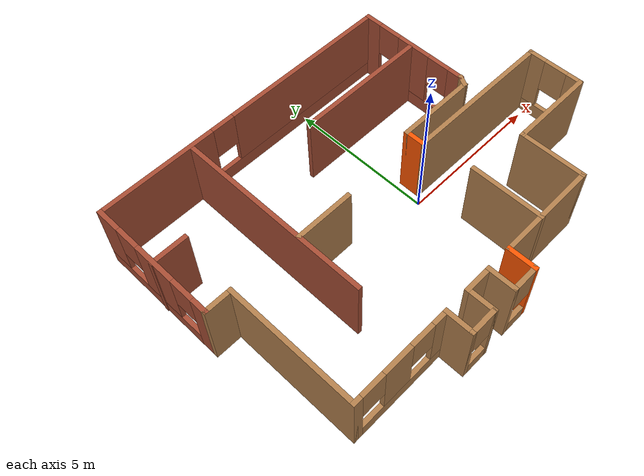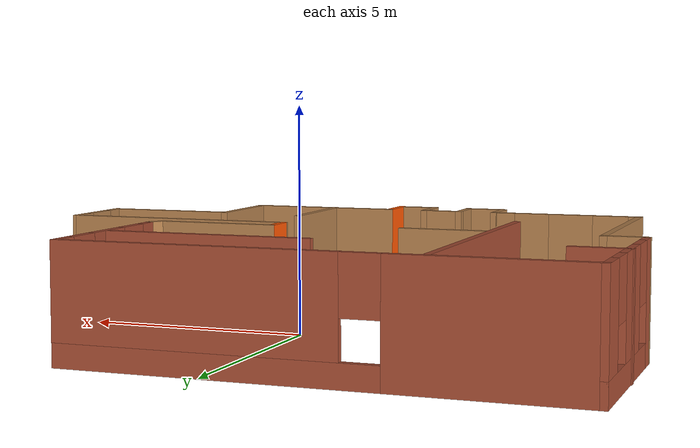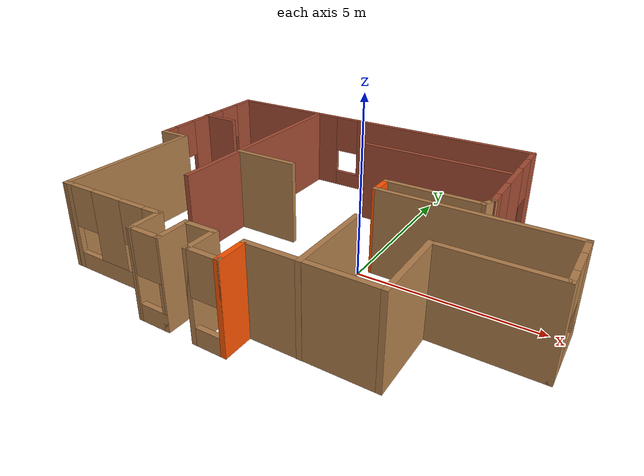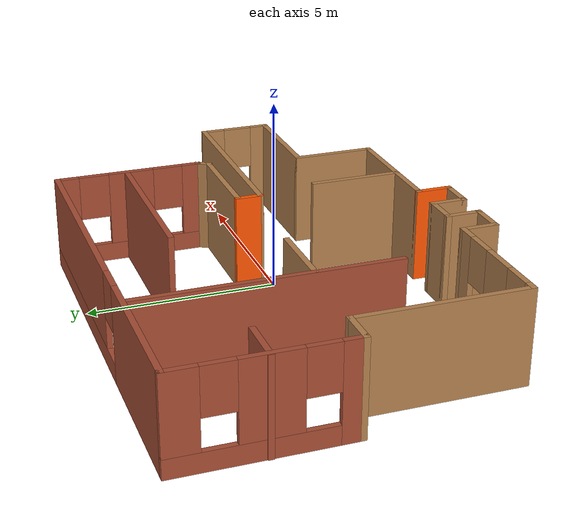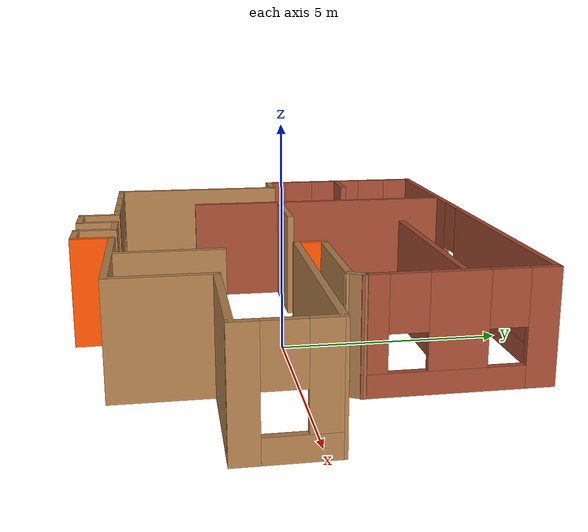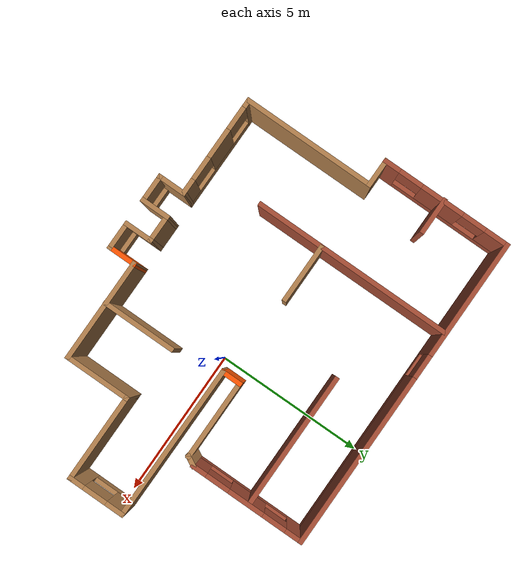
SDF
<?xml version='1.0'?>
<sdf version='1.6'>
  <model name='Building'>
    <pose frame=''>-1.11389 0.237 0 0 -0 0</pose>
    <link name='Wall_10'>
      <collision name='Wall_10_Collision'>
        <geometry>
          <box>
            <size>1 0.15 2.5</size>
          </box>
        </geometry>
        <pose frame=''>0 0 1.25 0 -0 0</pose>
      </collision>
      <visual name='Wall_10_Visual'>
        <pose frame=''>0 0 1.25 0 -0 0</pose>
        <geometry>
          <box>
            <size>1 0.15 2.5</size>
          </box>
        </geometry>
        <material>
          <script>
            <uri>file://media/materials/scripts/gazebo.material</uri>
            <name>Gazebo/Grey</name>
          </script>
          <ambient>1 0.333333 0 1</ambient>
        </material>
        <meta>
          <layer>0</layer>
        </meta>
      </visual>
      <pose frame=''>0.287386 -4.35 0 0 -0 1.5708</pose>
    </link>
    <link name='Wall_12'>
      <collision name='Wall_12_Collision'>
        <geometry>
          <box>
            <size>3.5 0.15 2.5</size>
          </box>
        </geometry>
        <pose frame=''>0 0 1.25 0 -0 0</pose>
      </collision>
      <visual name='Wall_12_Visual'>
        <pose frame=''>0 0 1.25 0 -0 0</pose>
        <geometry>
          <box>
            <size>3.5 0.15 2.5</size>
          </box>
        </geometry>
        <material>
          <script>
            <uri>file://media/materials/scripts/gazebo.material</uri>
            <name>Gazebo/Wood</name>
          </script>
          <ambient>1 0.333333 0 1</ambient>
        </material>
        <meta>
          <layer>0</layer>
        </meta>
      </visual>
      <pose frame=''>1.96239 -3.925 0 0 -0 0</pose>
    </link>
    <link name='Wall_13'>
      <collision name='Wall_13_Collision'>
        <geometry>
          <box>
            <size>2.25 0.15 2.5</size>
          </box>
        </geometry>
        <pose frame=''>0 0 1.25 0 -0 0</pose>
      </collision>
      <visual name='Wall_13_Visual'>
        <pose frame=''>0 0 1.25 0 -0 0</pose>
        <geometry>
          <box>
            <size>2.25 0.15 2.5</size>
          </box>
        </geometry>
        <material>
          <script>
            <uri>file://media/materials/scripts/gazebo.material</uri>
            <name>Gazebo/Wood</name>
          </script>
          <ambient>1 0.333333 0 1</ambient>
        </material>
        <meta>
          <layer>0</layer>
        </meta>
      </visual>
      <pose frame=''>3.63739 -2.875 0 0 -0 1.5708</pose>
    </link>
    <link name='Wall_14'>
      <collision name='Wall_14_Collision'>
        <geometry>
          <box>
            <size>3 0.15 2.5</size>
          </box>
        </geometry>
        <pose frame=''>0 0 1.25 0 -0 0</pose>
      </collision>
      <visual name='Wall_14_Visual'>
        <pose frame=''>0 0 1.25 0 -0 0</pose>
        <geometry>
          <box>
            <size>3 0.15 2.5</size>
          </box>
        </geometry>
        <material>
          <script>
            <uri>file://media/materials/scripts/gazebo.material</uri>
            <name>Gazebo/Wood</name>
          </script>
          <ambient>1 0.333333 0 1</ambient>
        </material>
        <meta>
          <layer>0</layer>
        </meta>
      </visual>
      <pose frame=''>5.06239 -1.825 0 0 -0 0</pose>
    </link>
    <link name='Wall_15'>
      <pose frame=''>6.48739 -0.9 0 0 -0 1.5708</pose>
      <visual name='Wall_15_Visual_0'>
        <pose frame=''>-0.725722 0 1.25 0 -0 0</pose>
        <geometry>
          <box>
            <size>0.548555 0.15 2.5</size>
          </box>
        </geometry>
        <material>
          <script>
            <uri>file://media/materials/scripts/gazebo.material</uri>
            <name>Gazebo/Wood</name>
          </script>
          <ambient>1 0.333333 0 1</ambient>
        </material>
        <meta>
          <layer>0</layer>
        </meta>
      </visual>
      <collision name='Wall_15_Collision_0'>
        <geometry>
          <box>
            <size>0.548555 0.15 2.5</size>
          </box>
        </geometry>
        <pose frame=''>-0.725722 0 1.25 0 -0 0</pose>
      </collision>
      <visual name='Wall_15_Visual_1'>
        <pose frame=''>0.274278 0 0.25 0 -0 0</pose>
        <geometry>
          <box>
            <size>1.45145 0.15 0.5</size>
          </box>
        </geometry>
        <material>
          <script>
            <uri>file://media/materials/scripts/gazebo.material</uri>
            <name>Gazebo/Wood</name>
          </script>
          <ambient>1 0.333333 0 1</ambient>
        </material>
        <meta>
          <layer>0</layer>
        </meta>
      </visual>
      <collision name='Wall_15_Collision_1'>
        <geometry>
          <box>
            <size>1.45145 0.15 0.5</size>
          </box>
        </geometry>
        <pose frame=''>0.274278 0 0.25 0 -0 0</pose>
      </collision>
      <visual name='Wall_15_Visual_2'>
        <pose frame=''>0.674278 0 1.5 0 -0 0</pose>
        <geometry>
          <box>
            <size>0.651445 0.15 2</size>
          </box>
        </geometry>
        <material>
          <script>
            <uri>file://media/materials/scripts/gazebo.material</uri>
            <name>Gazebo/Wood</name>
          </script>
          <ambient>1 0.333333 0 1</ambient>
        </material>
        <meta>
          <layer>0</layer>
        </meta>
      </visual>
      <collision name='Wall_15_Collision_2'>
        <geometry>
          <box>
            <size>0.651445 0.15 2</size>
          </box>
        </geometry>
        <pose frame=''>0.674278 0 1.5 0 -0 0</pose>
      </collision>
      <visual name='Wall_15_Visual_3'>
        <pose frame=''>-0.051445 0 1.9 0 -0 0</pose>
        <geometry>
          <box>
            <size>0.8 0.15 1.2</size>
          </box>
        </geometry>
        <material>
          <script>
            <uri>file://media/materials/scripts/gazebo.material</uri>
            <name>Gazebo/Wood</name>
          </script>
          <ambient>1 0.333333 0 1</ambient>
        </material>
        <meta>
          <layer>0</layer>
        </meta>
      </visual>
      <collision name='Wall_15_Collision_3'>
        <geometry>
          <box>
            <size>0.8 0.15 1.2</size>
          </box>
        </geometry>
        <pose frame=''>-0.051445 0 1.9 0 -0 0</pose>
      </collision>
    </link>
    <link name='Wall_16'>
      <collision name='Wall_16_Collision'>
        <geometry>
          <box>
            <size>5.25 0.15 2.5</size>
          </box>
        </geometry>
        <pose frame=''>0 0 1.25 0 -0 0</pose>
      </collision>
      <visual name='Wall_16_Visual'>
        <pose frame=''>0 0 1.25 0 -0 0</pose>
        <geometry>
          <box>
            <size>5.25 0.15 2.5</size>
          </box>
        </geometry>
        <material>
          <script>
            <uri>file://media/materials/scripts/gazebo.material</uri>
            <name>Gazebo/Wood</name>
          </script>
          <ambient>1 0.333333 0 1</ambient>
        </material>
        <meta>
          <layer>0</layer>
        </meta>
      </visual>
      <pose frame=''>3.93739 0.0365 0 0 -0 3.13708</pose>
    </link>
    <link name='Wall_2'>
      <collision name='Wall_2_Collision'>
        <geometry>
          <box>
            <size>4.5 0.15 2.5</size>
          </box>
        </geometry>
        <pose frame=''>0 0 1.25 0 -0 0</pose>
      </collision>
      <visual name='Wall_2_Visual'>
        <pose frame=''>0 0 1.25 0 -0 0</pose>
        <geometry>
          <box>
            <size>4.5 0.15 2.5</size>
          </box>
        </geometry>
        <material>
          <script>
            <uri>file://media/materials/scripts/gazebo.material</uri>
            <name>Gazebo/Wood</name>
          </script>
          <ambient>0 0 0.498039 1</ambient>
        </material>
        <meta>
          <layer>0</layer>
        </meta>
      </visual>
      <pose frame=''>-5.61261 -1.75 0 0 0 -1.5708</pose>
    </link>
    <link name='Wall_21'>
      <collision name='Wall_21_Collision'>
        <geometry>
          <box>
            <size>0.75 0.15 2.5</size>
          </box>
        </geometry>
        <pose frame=''>0 0 1.25 0 -0 0</pose>
      </collision>
      <visual name='Wall_21_Visual'>
        <pose frame=''>0 0 1.25 0 -0 0</pose>
        <geometry>
          <box>
            <size>0.75 0.15 2.5</size>
          </box>
        </geometry>
        <material>
          <script>
            <uri>file://media/materials/scripts/gazebo.material</uri>
            <name>Gazebo/Grey</name>
          </script>
          <ambient>1 0.333333 0 1</ambient>
        </material>
        <meta>
          <layer>0</layer>
        </meta>
      </visual>
      <pose frame=''>1.38739 0.348 0 0 -0 1.5708</pose>
    </link>
    <link name='Wall_25'>
      <collision name='Wall_25_Collision'>
        <geometry>
          <box>
            <size>1 0.15 2.5</size>
          </box>
        </geometry>
        <pose frame=''>0 0 1.25 0 -0 0</pose>
      </collision>
      <visual name='Wall_25_Visual'>
        <pose frame=''>0 0 1.25 0 -0 0</pose>
        <geometry>
          <box>
            <size>1 0.15 2.5</size>
          </box>
        </geometry>
        <material>
          <script>
            <uri>file://media/materials/scripts/gazebo.material</uri>
            <name>Gazebo/Wood</name>
          </script>
          <ambient>0.996078 0.47451 0.0196078 1</ambient>
        </material>
        <meta>
          <layer>0</layer>
        </meta>
      </visual>
      <pose frame=''>-6.03761 0.425 0 0 -0 3.14159</pose>
    </link>
    <link name='Wall_26'>
      <pose frame=''>-6.46261 2.6 0 0 -0 1.5708</pose>
      <visual name='Wall_26_Visual_0'>
        <pose frame=''>-1.95691 0 1.25 0 -0 0</pose>
        <geometry>
          <box>
            <size>0.586172 0.15 2.5</size>
          </box>
        </geometry>
        <material>
          <script>
            <uri>file://media/materials/scripts/gazebo.material</uri>
            <name>Gazebo/Bricks</name>
          </script>
          <ambient>0 0 0.498039 1</ambient>
        </material>
        <meta>
          <layer>0</layer>
        </meta>
      </visual>
      <collision name='Wall_26_Collision_0'>
        <geometry>
          <box>
            <size>0.586172 0.15 2.5</size>
          </box>
        </geometry>
        <pose frame=''>-1.95691 0 1.25 0 -0 0</pose>
      </collision>
      <visual name='Wall_26_Visual_1'>
        <pose frame=''>0.293086 0 0.25 0 -0 0</pose>
        <geometry>
          <box>
            <size>3.91383 0.15 0.5</size>
          </box>
        </geometry>
        <material>
          <script>
            <uri>file://media/materials/scripts/gazebo.material</uri>
            <name>Gazebo/Bricks</name>
          </script>
          <ambient>0 0 0.498039 1</ambient>
        </material>
        <meta>
          <layer>0</layer>
        </meta>
      </visual>
      <collision name='Wall_26_Collision_1'>
        <geometry>
          <box>
            <size>3.91383 0.15 0.5</size>
          </box>
        </geometry>
        <pose frame=''>0.293086 0 0.25 0 -0 0</pose>
      </collision>
      <visual name='Wall_26_Visual_2'>
        <pose frame=''>-0.133319 0 1.5 0 -0 0</pose>
        <geometry>
          <box>
            <size>1.46102 0.15 2</size>
          </box>
        </geometry>
        <material>
          <script>
            <uri>file://media/materials/scripts/gazebo.material</uri>
            <name>Gazebo/Bricks</name>
          </script>
          <ambient>0 0 0.498039 1</ambient>
        </material>
        <meta>
          <layer>0</layer>
        </meta>
      </visual>
      <collision name='Wall_26_Collision_2'>
        <geometry>
          <box>
            <size>1.46102 0.15 2</size>
          </box>
        </geometry>
        <pose frame=''>-0.133319 0 1.5 0 -0 0</pose>
      </collision>
      <visual name='Wall_26_Visual_3'>
        <pose frame=''>1.8236 0 1.5 0 -0 0</pose>
        <geometry>
          <box>
            <size>0.852811 0.15 2</size>
          </box>
        </geometry>
        <material>
          <script>
            <uri>file://media/materials/scripts/gazebo.material</uri>
            <name>Gazebo/Bricks</name>
          </script>
          <ambient>0 0 0.498039 1</ambient>
        </material>
        <meta>
          <layer>0</layer>
        </meta>
      </visual>
      <collision name='Wall_26_Collision_3'>
        <geometry>
          <box>
            <size>0.852811 0.15 2</size>
          </box>
        </geometry>
        <pose frame=''>1.8236 0 1.5 0 -0 0</pose>
      </collision>
      <visual name='Wall_26_Visual_4'>
        <pose frame=''>-1.26383 0 1.9 0 -0 0</pose>
        <geometry>
          <box>
            <size>0.8 0.15 1.2</size>
          </box>
        </geometry>
        <material>
          <script>
            <uri>file://media/materials/scripts/gazebo.material</uri>
            <name>Gazebo/Bricks</name>
          </script>
          <ambient>0 0 0.498039 1</ambient>
        </material>
        <meta>
          <layer>0</layer>
        </meta>
      </visual>
      <collision name='Wall_26_Collision_4'>
        <geometry>
          <box>
            <size>0.8 0.15 1.2</size>
          </box>
        </geometry>
        <pose frame=''>-1.26383 0 1.9 0 -0 0</pose>
      </collision>
      <visual name='Wall_26_Visual_5'>
        <pose frame=''>0.997189 0 1.9 0 -0 0</pose>
        <geometry>
          <box>
            <size>0.8 0.15 1.2</size>
          </box>
        </geometry>
        <material>
          <script>
            <uri>file://media/materials/scripts/gazebo.material</uri>
            <name>Gazebo/Bricks</name>
          </script>
          <ambient>0 0 0.498039 1</ambient>
        </material>
        <meta>
          <layer>0</layer>
        </meta>
      </visual>
      <collision name='Wall_26_Collision_5'>
        <geometry>
          <box>
            <size>0.8 0.15 1.2</size>
          </box>
        </geometry>
        <pose frame=''>0.997189 0 1.9 0 -0 0</pose>
      </collision>
    </link>
    <link name='Wall_27'>
      <pose frame=''>-1.16261 4.775 0 0 -0 0</pose>
      <visual name='Wall_27_Visual_0'>
        <pose frame=''>-3.35553 0 1.25 0 -0 0</pose>
        <geometry>
          <box>
            <size>4.03895 0.15 2.5</size>
          </box>
        </geometry>
        <material>
          <script>
            <uri>file://media/materials/scripts/gazebo.material</uri>
            <name>Gazebo/Bricks</name>
          </script>
          <ambient>0.996078 0.47451 0.0196078 1</ambient>
        </material>
        <meta>
          <layer>0</layer>
        </meta>
      </visual>
      <collision name='Wall_27_Collision_0'>
        <geometry>
          <box>
            <size>4.03895 0.15 2.5</size>
          </box>
        </geometry>
        <pose frame=''>-3.35553 0 1.25 0 -0 0</pose>
      </collision>
      <visual name='Wall_27_Visual_1'>
        <pose frame=''>2.01947 0 0.25 0 -0 0</pose>
        <geometry>
          <box>
            <size>6.71105 0.15 0.5</size>
          </box>
        </geometry>
        <material>
          <script>
            <uri>file://media/materials/scripts/gazebo.material</uri>
            <name>Gazebo/Bricks</name>
          </script>
          <ambient>0.996078 0.47451 0.0196078 1</ambient>
        </material>
        <meta>
          <layer>0</layer>
        </meta>
      </visual>
      <collision name='Wall_27_Collision_1'>
        <geometry>
          <box>
            <size>6.71105 0.15 0.5</size>
          </box>
        </geometry>
        <pose frame=''>2.01947 0 0.25 0 -0 0</pose>
      </collision>
      <visual name='Wall_27_Visual_2'>
        <pose frame=''>2.41947 0 1.5 0 -0 0</pose>
        <geometry>
          <box>
            <size>5.91105 0.15 2</size>
          </box>
        </geometry>
        <material>
          <script>
            <uri>file://media/materials/scripts/gazebo.material</uri>
            <name>Gazebo/Bricks</name>
          </script>
          <ambient>0.996078 0.47451 0.0196078 1</ambient>
        </material>
        <meta>
          <layer>0</layer>
        </meta>
      </visual>
      <collision name='Wall_27_Collision_2'>
        <geometry>
          <box>
            <size>5.91105 0.15 2</size>
          </box>
        </geometry>
        <pose frame=''>2.41947 0 1.5 0 -0 0</pose>
      </collision>
      <visual name='Wall_27_Visual_3'>
        <pose frame=''>-0.936052 0 1.9 0 -0 0</pose>
        <geometry>
          <box>
            <size>0.8 0.15 1.2</size>
          </box>
        </geometry>
        <material>
          <script>
            <uri>file://media/materials/scripts/gazebo.material</uri>
            <name>Gazebo/Bricks</name>
          </script>
          <ambient>0.996078 0.47451 0.0196078 1</ambient>
        </material>
        <meta>
          <layer>0</layer>
        </meta>
      </visual>
      <collision name='Wall_27_Collision_3'>
        <geometry>
          <box>
            <size>0.8 0.15 1.2</size>
          </box>
        </geometry>
        <pose frame=''>-0.936052 0 1.9 0 -0 0</pose>
      </collision>
    </link>
    <link name='Wall_28'>
      <pose frame=''>4.13739 2.85 0 0 0 -1.5708</pose>
      <visual name='Wall_28_Visual_0'>
        <pose frame=''>-1.67999 0 1.25 0 -0 0</pose>
        <geometry>
          <box>
            <size>0.640009 0.15 2.5</size>
          </box>
        </geometry>
        <material>
          <script>
            <uri>file://media/materials/scripts/gazebo.material</uri>
            <name>Gazebo/Bricks</name>
          </script>
          <ambient>1 0.333333 0 1</ambient>
        </material>
        <meta>
          <layer>0</layer>
        </meta>
      </visual>
      <collision name='Wall_28_Collision_0'>
        <geometry>
          <box>
            <size>0.640009 0.15 2.5</size>
          </box>
        </geometry>
        <pose frame=''>-1.67999 0 1.25 0 -0 0</pose>
      </collision>
      <visual name='Wall_28_Visual_1'>
        <pose frame=''>0.320005 0 0.25 0 -0 0</pose>
        <geometry>
          <box>
            <size>3.35999 0.15 0.5</size>
          </box>
        </geometry>
        <material>
          <script>
            <uri>file://media/materials/scripts/gazebo.material</uri>
            <name>Gazebo/Bricks</name>
          </script>
          <ambient>1 0.333333 0 1</ambient>
        </material>
        <meta>
          <layer>0</layer>
        </meta>
      </visual>
      <collision name='Wall_28_Collision_1'>
        <geometry>
          <box>
            <size>3.35999 0.15 0.5</size>
          </box>
        </geometry>
        <pose frame=''>0.320005 0 0.25 0 -0 0</pose>
      </collision>
      <visual name='Wall_28_Visual_2'>
        <pose frame=''>0.050817 0 1.5 0 -0 0</pose>
        <geometry>
          <box>
            <size>1.22161 0.15 2</size>
          </box>
        </geometry>
        <material>
          <script>
            <uri>file://media/materials/scripts/gazebo.material</uri>
            <name>Gazebo/Bricks</name>
          </script>
          <ambient>1 0.333333 0 1</ambient>
        </material>
        <meta>
          <layer>0</layer>
        </meta>
      </visual>
      <collision name='Wall_28_Collision_2'>
        <geometry>
          <box>
            <size>1.22161 0.15 2</size>
          </box>
        </geometry>
        <pose frame=''>0.050817 0 1.5 0 -0 0</pose>
      </collision>
      <visual name='Wall_28_Visual_3'>
        <pose frame=''>1.73081 0 1.5 0 -0 0</pose>
        <geometry>
          <box>
            <size>0.538376 0.15 2</size>
          </box>
        </geometry>
        <material>
          <script>
            <uri>file://media/materials/scripts/gazebo.material</uri>
            <name>Gazebo/Bricks</name>
          </script>
          <ambient>1 0.333333 0 1</ambient>
        </material>
        <meta>
          <layer>0</layer>
        </meta>
      </visual>
      <collision name='Wall_28_Collision_3'>
        <geometry>
          <box>
            <size>0.538376 0.15 2</size>
          </box>
        </geometry>
        <pose frame=''>1.73081 0 1.5 0 -0 0</pose>
      </collision>
      <visual name='Wall_28_Visual_4'>
        <pose frame=''>-0.959991 0 1.9 0 -0 0</pose>
        <geometry>
          <box>
            <size>0.8 0.15 1.2</size>
          </box>
        </geometry>
        <material>
          <script>
            <uri>file://media/materials/scripts/gazebo.material</uri>
            <name>Gazebo/Bricks</name>
          </script>
          <ambient>1 0.333333 0 1</ambient>
        </material>
        <meta>
          <layer>0</layer>
        </meta>
      </visual>
      <collision name='Wall_28_Collision_4'>
        <geometry>
          <box>
            <size>0.8 0.15 1.2</size>
          </box>
        </geometry>
        <pose frame=''>-0.959991 0 1.9 0 -0 0</pose>
      </collision>
      <visual name='Wall_28_Visual_5'>
        <pose frame=''>1.06162 0 1.9 0 -0 0</pose>
        <geometry>
          <box>
            <size>0.8 0.15 1.2</size>
          </box>
        </geometry>
        <material>
          <script>
            <uri>file://media/materials/scripts/gazebo.material</uri>
            <name>Gazebo/Bricks</name>
          </script>
          <ambient>1 0.333333 0 1</ambient>
        </material>
        <meta>
          <layer>0</layer>
        </meta>
      </visual>
      <collision name='Wall_28_Collision_5'>
        <geometry>
          <box>
            <size>0.8 0.15 1.2</size>
          </box>
        </geometry>
        <pose frame=''>1.06162 0 1.9 0 -0 0</pose>
      </collision>
    </link>
    <link name='Wall_3'>
      <pose frame=''>-3.93761 -3.925 0 0 -0 0</pose>
      <visual name='Wall_3_Visual_0'>
        <pose frame=''>-1.59194 0 1.25 0 -0 0</pose>
        <geometry>
          <box>
            <size>0.316126 0.15 2.5</size>
          </box>
        </geometry>
        <material>
          <script>
            <uri>file://media/materials/scripts/gazebo.material</uri>
            <name>Gazebo/Wood</name>
          </script>
          <ambient>0 0 0.498039 1</ambient>
        </material>
        <meta>
          <layer>0</layer>
        </meta>
      </visual>
      <collision name='Wall_3_Collision_0'>
        <geometry>
          <box>
            <size>0.316126 0.15 2.5</size>
          </box>
        </geometry>
        <pose frame=''>-1.59194 0 1.25 0 -0 0</pose>
      </collision>
      <visual name='Wall_3_Visual_1'>
        <pose frame=''>0.158063 0 0.25 0 -0 0</pose>
        <geometry>
          <box>
            <size>3.18387 0.15 0.5</size>
          </box>
        </geometry>
        <material>
          <script>
            <uri>file://media/materials/scripts/gazebo.material</uri>
            <name>Gazebo/Wood</name>
          </script>
          <ambient>0 0 0.498039 1</ambient>
        </material>
        <meta>
          <layer>0</layer>
        </meta>
      </visual>
      <collision name='Wall_3_Collision_1'>
        <geometry>
          <box>
            <size>3.18387 0.15 0.5</size>
          </box>
        </geometry>
        <pose frame=''>0.158063 0 0.25 0 -0 0</pose>
      </collision>
      <visual name='Wall_3_Visual_2'>
        <pose frame=''>-0.129467 0 1.5 0 -0 0</pose>
        <geometry>
          <box>
            <size>1.00881 0.15 2</size>
          </box>
        </geometry>
        <material>
          <script>
            <uri>file://media/materials/scripts/gazebo.material</uri>
            <name>Gazebo/Wood</name>
          </script>
          <ambient>0 0 0.498039 1</ambient>
        </material>
        <meta>
          <layer>0</layer>
        </meta>
      </visual>
      <collision name='Wall_3_Collision_2'>
        <geometry>
          <box>
            <size>1.00881 0.15 2</size>
          </box>
        </geometry>
        <pose frame=''>-0.129467 0 1.5 0 -0 0</pose>
      </collision>
      <visual name='Wall_3_Visual_3'>
        <pose frame=''>1.46247 0 1.5 0 -0 0</pose>
        <geometry>
          <box>
            <size>0.57506 0.15 2</size>
          </box>
        </geometry>
        <material>
          <script>
            <uri>file://media/materials/scripts/gazebo.material</uri>
            <name>Gazebo/Wood</name>
          </script>
          <ambient>0 0 0.498039 1</ambient>
        </material>
        <meta>
          <layer>0</layer>
        </meta>
      </visual>
      <collision name='Wall_3_Collision_3'>
        <geometry>
          <box>
            <size>0.57506 0.15 2</size>
          </box>
        </geometry>
        <pose frame=''>1.46247 0 1.5 0 -0 0</pose>
      </collision>
      <visual name='Wall_3_Visual_4'>
        <pose frame=''>-1.03387 0 1.9 0 -0 0</pose>
        <geometry>
          <box>
            <size>0.8 0.15 1.2</size>
          </box>
        </geometry>
        <material>
          <script>
            <uri>file://media/materials/scripts/gazebo.material</uri>
            <name>Gazebo/Wood</name>
          </script>
          <ambient>0 0 0.498039 1</ambient>
        </material>
        <meta>
          <layer>0</layer>
        </meta>
      </visual>
      <collision name='Wall_3_Collision_4'>
        <geometry>
          <box>
            <size>0.8 0.15 1.2</size>
          </box>
        </geometry>
        <pose frame=''>-1.03387 0 1.9 0 -0 0</pose>
      </collision>
      <visual name='Wall_3_Visual_5'>
        <pose frame=''>0.77494 0 1.9 0 -0 0</pose>
        <geometry>
          <box>
            <size>0.8 0.15 1.2</size>
          </box>
        </geometry>
        <material>
          <script>
            <uri>file://media/materials/scripts/gazebo.material</uri>
            <name>Gazebo/Wood</name>
          </script>
          <ambient>0 0 0.498039 1</ambient>
        </material>
        <meta>
          <layer>0</layer>
        </meta>
      </visual>
      <collision name='Wall_3_Collision_5'>
        <geometry>
          <box>
            <size>0.8 0.15 1.2</size>
          </box>
        </geometry>
        <pose frame=''>0.77494 0 1.9 0 -0 0</pose>
      </collision>
    </link>
    <link name='Wall_30'>
      <collision name='Wall_30_Collision'>
        <geometry>
          <box>
            <size>2.75 0.15 2.5</size>
          </box>
        </geometry>
        <pose frame=''>0 0 1.25 0 -0 0</pose>
      </collision>
      <visual name='Wall_30_Visual'>
        <pose frame=''>0 0 1.25 0 -0 0</pose>
        <geometry>
          <box>
            <size>2.75 0.15 2.5</size>
          </box>
        </geometry>
        <material>
          <script>
            <uri>file://media/materials/scripts/gazebo.material</uri>
            <name>Gazebo/Wood</name>
          </script>
          <ambient>1 0.333333 0 1</ambient>
        </material>
        <meta>
          <layer>0</layer>
        </meta>
      </visual>
      <pose frame=''>2.68739 0.648 0 0 -0 0</pose>
    </link>
    <link name='Wall_31'>
      <collision name='Wall_31_Collision'>
        <geometry>
          <box>
            <size>0.465006 0.15 2.5</size>
          </box>
        </geometry>
        <pose frame=''>0 0 1.25 0 -0 0</pose>
      </collision>
      <visual name='Wall_31_Visual'>
        <pose frame=''>0 0 1.25 0 -0 0</pose>
        <geometry>
          <box>
            <size>0.465006 0.15 2.5</size>
          </box>
        </geometry>
        <material>
          <script>
            <uri>file://media/materials/scripts/gazebo.material</uri>
            <name>Gazebo/Wood</name>
          </script>
          <ambient>1 0.333333 0 1</ambient>
        </material>
        <meta>
          <layer>0</layer>
        </meta>
      </visual>
      <pose frame=''>4.06239 0.7865 0 0 -0 1.07449</pose>
    </link>
    <link name='Wall_33'>
      <collision name='Wall_33_Collision'>
        <geometry>
          <box>
            <size>6.75 0.15 2.5</size>
          </box>
        </geometry>
        <pose frame=''>0 0 1.25 0 -0 0</pose>
      </collision>
      <visual name='Wall_33_Visual'>
        <pose frame=''>0 0 1.25 0 -0 0</pose>
        <geometry>
          <box>
            <size>6.75 0.15 2.5</size>
          </box>
        </geometry>
        <material>
          <script>
            <uri>file://media/materials/scripts/gazebo.material</uri>
            <name>Gazebo/Bricks</name>
          </script>
          <ambient>0 0 0.498039 1</ambient>
        </material>
        <meta>
          <layer>0</layer>
        </meta>
      </visual>
      <pose frame=''>-3.29568 1.441 0 0 0 -1.5708</pose>
    </link>
    <link name='Wall_35'>
      <collision name='Wall_35_Collision'>
        <geometry>
          <box>
            <size>4.5 0.15 2.5</size>
          </box>
        </geometry>
        <pose frame=''>0 0 1.25 0 -0 0</pose>
      </collision>
      <visual name='Wall_35_Visual'>
        <pose frame=''>0 0 1.25 0 -0 0</pose>
        <geometry>
          <box>
            <size>4.5 0.15 2.5</size>
          </box>
        </geometry>
        <material>
          <script>
            <uri>file://media/materials/scripts/gazebo.material</uri>
            <name>Gazebo/Bricks</name>
          </script>
          <ambient>0 0 0.498039 1</ambient>
        </material>
        <meta>
          <layer>0</layer>
        </meta>
      </visual>
      <pose frame=''>1.83195 2.90558 0 0 -0 0</pose>
    </link>
    <link name='Wall_37'>
      <collision name='Wall_37_Collision'>
        <geometry>
          <box>
            <size>1.25 0.15 2.5</size>
          </box>
        </geometry>
        <pose frame=''>0 0 1.25 0 -0 0</pose>
      </collision>
      <visual name='Wall_37_Visual'>
        <pose frame=''>0 0 1.25 0 -0 0</pose>
        <geometry>
          <box>
            <size>1.25 0.15 2.5</size>
          </box>
        </geometry>
        <material>
          <script>
            <uri>file://media/materials/scripts/gazebo.material</uri>
            <name>Gazebo/Bricks</name>
          </script>
          <ambient>0 0 0.498039 1</ambient>
        </material>
        <meta>
          <layer>0</layer>
        </meta>
      </visual>
      <pose frame=''>-5.9377 2.50658 0 0 -0 0</pose>
    </link>
    <link name='Wall_39'>
      <collision name='Wall_39_Collision'>
        <geometry>
          <box>
            <size>2.5 0.15 2.5</size>
          </box>
        </geometry>
        <pose frame=''>0 0 1.25 0 -0 0</pose>
      </collision>
      <visual name='Wall_39_Visual'>
        <pose frame=''>0 0 1.25 0 -0 0</pose>
        <geometry>
          <box>
            <size>2.5 0.15 2.5</size>
          </box>
        </geometry>
        <material>
          <script>
            <uri>file://media/materials/scripts/gazebo.material</uri>
            <name>Gazebo/Wood</name>
          </script>
          <ambient>1 0.333333 0 1</ambient>
        </material>
        <meta>
          <layer>0</layer>
        </meta>
      </visual>
      <pose frame=''>1.70516 -2.75567 0 0 -0 1.5708</pose>
    </link>
    <link name='Wall_4'>
      <collision name='Wall_4_Collision'>
        <geometry>
          <box>
            <size>1 0.15 2.5</size>
          </box>
        </geometry>
        <pose frame=''>0 0 1.25 0 -0 0</pose>
      </collision>
      <visual name='Wall_4_Visual'>
        <pose frame=''>0 0 1.25 0 -0 0</pose>
        <geometry>
          <box>
            <size>1 0.15 2.5</size>
          </box>
        </geometry>
        <material>
          <script>
            <uri>file://media/materials/scripts/gazebo.material</uri>
            <name>Gazebo/Wood</name>
          </script>
          <ambient>1 0.333333 0 1</ambient>
        </material>
        <meta>
          <layer>0</layer>
        </meta>
      </visual>
      <pose frame=''>-2.26261 -4.35 0 0 0 -1.5708</pose>
    </link>
    <link name='Wall_41'>
      <collision name='Wall_41_Collision'>
        <geometry>
          <box>
            <size>2 0.15 2.5</size>
          </box>
        </geometry>
        <pose frame=''>0 0 1.25 0 -0 0</pose>
      </collision>
      <visual name='Wall_41_Visual'>
        <pose frame=''>0 0 1.25 0 -0 0</pose>
        <geometry>
          <box>
            <size>2 0.15 2.5</size>
          </box>
        </geometry>
        <material>
          <script>
            <uri>file://media/materials/scripts/gazebo.material</uri>
            <name>Gazebo/Wood</name>
          </script>
          <ambient>1 1 1 1</ambient>
        </material>
        <meta>
          <layer>0</layer>
        </meta>
      </visual>
      <pose frame=''>-2.34408 0.325365 0 0 -0 0</pose>
    </link>
    <link name='Wall_5'>
      <pose frame=''>-1.83761 -4.775 0 0 -0 0</pose>
      <visual name='Wall_5_Visual_0'>
        <pose frame=''>-0.434225 0 1.25 0 -0 0</pose>
        <geometry>
          <box>
            <size>0.13155 0.15 2.5</size>
          </box>
        </geometry>
        <material>
          <script>
            <uri>file://media/materials/scripts/gazebo.material</uri>
            <name>Gazebo/Wood</name>
          </script>
          <ambient>1 0.333333 0 1</ambient>
        </material>
        <meta>
          <layer>0</layer>
        </meta>
      </visual>
      <collision name='Wall_5_Collision_0'>
        <geometry>
          <box>
            <size>0.13155 0.15 2.5</size>
          </box>
        </geometry>
        <pose frame=''>-0.434225 0 1.25 0 -0 0</pose>
      </collision>
      <visual name='Wall_5_Visual_1'>
        <pose frame=''>0.065775 0 0.25 0 -0 0</pose>
        <geometry>
          <box>
            <size>0.86845 0.15 0.5</size>
          </box>
        </geometry>
        <material>
          <script>
            <uri>file://media/materials/scripts/gazebo.material</uri>
            <name>Gazebo/Wood</name>
          </script>
          <ambient>1 0.333333 0 1</ambient>
        </material>
        <meta>
          <layer>0</layer>
        </meta>
      </visual>
      <collision name='Wall_5_Collision_1'>
        <geometry>
          <box>
            <size>0.86845 0.15 0.5</size>
          </box>
        </geometry>
        <pose frame=''>0.065775 0 0.25 0 -0 0</pose>
      </collision>
      <visual name='Wall_5_Visual_2'>
        <pose frame=''>0.465775 0 1.5 0 -0 0</pose>
        <geometry>
          <box>
            <size>0.06845 0.15 2</size>
          </box>
        </geometry>
        <material>
          <script>
            <uri>file://media/materials/scripts/gazebo.material</uri>
            <name>Gazebo/Wood</name>
          </script>
          <ambient>1 0.333333 0 1</ambient>
        </material>
        <meta>
          <layer>0</layer>
        </meta>
      </visual>
      <collision name='Wall_5_Collision_2'>
        <geometry>
          <box>
            <size>0.06845 0.15 2</size>
          </box>
        </geometry>
        <pose frame=''>0.465775 0 1.5 0 -0 0</pose>
      </collision>
      <visual name='Wall_5_Visual_3'>
        <pose frame=''>0.03155 0 1.9 0 -0 0</pose>
        <geometry>
          <box>
            <size>0.8 0.15 1.2</size>
          </box>
        </geometry>
        <material>
          <script>
            <uri>file://media/materials/scripts/gazebo.material</uri>
            <name>Gazebo/Wood</name>
          </script>
          <ambient>1 0.333333 0 1</ambient>
        </material>
        <meta>
          <layer>0</layer>
        </meta>
      </visual>
      <collision name='Wall_5_Collision_3'>
        <geometry>
          <box>
            <size>0.8 0.15 1.2</size>
          </box>
        </geometry>
        <pose frame=''>0.03155 0 1.9 0 -0 0</pose>
      </collision>
    </link>
    <link name='Wall_6'>
      <collision name='Wall_6_Collision'>
        <geometry>
          <box>
            <size>1 0.15 2.5</size>
          </box>
        </geometry>
        <pose frame=''>0 0 1.25 0 -0 0</pose>
      </collision>
      <visual name='Wall_6_Visual'>
        <pose frame=''>0 0 1.25 0 -0 0</pose>
        <geometry>
          <box>
            <size>1 0.15 2.5</size>
          </box>
        </geometry>
        <material>
          <script>
            <uri>file://media/materials/scripts/gazebo.material</uri>
            <name>Gazebo/Wood</name>
          </script>
          <ambient>1 0.333333 0 1</ambient>
        </material>
        <meta>
          <layer>0</layer>
        </meta>
      </visual>
      <pose frame=''>-1.41261 -4.35 0 0 -0 1.5708</pose>
    </link>
    <link name='Wall_7'>
      <collision name='Wall_7_Collision'>
        <geometry>
          <box>
            <size>1 0.15 2.5</size>
          </box>
        </geometry>
        <pose frame=''>0 0 1.25 0 -0 0</pose>
      </collision>
      <visual name='Wall_7_Visual'>
        <pose frame=''>0 0 1.25 0 -0 0</pose>
        <geometry>
          <box>
            <size>1 0.15 2.5</size>
          </box>
        </geometry>
        <material>
          <script>
            <uri>file://media/materials/scripts/gazebo.material</uri>
            <name>Gazebo/Wood</name>
          </script>
          <ambient>1 0.333333 0 1</ambient>
        </material>
        <meta>
          <layer>0</layer>
        </meta>
      </visual>
      <pose frame=''>-0.987614 -3.925 0 0 -0 0</pose>
    </link>
    <link name='Wall_8'>
      <collision name='Wall_8_Collision'>
        <geometry>
          <box>
            <size>1 0.15 2.5</size>
          </box>
        </geometry>
        <pose frame=''>0 0 1.25 0 -0 0</pose>
      </collision>
      <visual name='Wall_8_Visual'>
        <pose frame=''>0 0 1.25 0 -0 0</pose>
        <geometry>
          <box>
            <size>1 0.15 2.5</size>
          </box>
        </geometry>
        <material>
          <script>
            <uri>file://media/materials/scripts/gazebo.material</uri>
            <name>Gazebo/Wood</name>
          </script>
          <ambient>1 0.333333 0 1</ambient>
        </material>
        <meta>
          <layer>0</layer>
        </meta>
      </visual>
      <pose frame=''>-0.562614 -4.35 0 0 0 -1.5708</pose>
    </link>
    <link name='Wall_9'>
      <pose frame=''>-0.137614 -4.775 0 0 -0 0</pose>
      <visual name='Wall_9_Visual_0'>
        <pose frame=''>-0.446319 0 1.25 0 -0 0</pose>
        <geometry>
          <box>
            <size>0.107362 0.15 2.5</size>
          </box>
        </geometry>
        <material>
          <script>
            <uri>file://media/materials/scripts/gazebo.material</uri>
            <name>Gazebo/Wood</name>
          </script>
          <ambient>1 0.333333 0 1</ambient>
        </material>
        <meta>
          <layer>0</layer>
        </meta>
      </visual>
      <collision name='Wall_9_Collision_0'>
        <geometry>
          <box>
            <size>0.107362 0.15 2.5</size>
          </box>
        </geometry>
        <pose frame=''>-0.446319 0 1.25 0 -0 0</pose>
      </collision>
      <visual name='Wall_9_Visual_1'>
        <pose frame=''>0.053681 0 0.25 0 -0 0</pose>
        <geometry>
          <box>
            <size>0.892638 0.15 0.5</size>
          </box>
        </geometry>
        <material>
          <script>
            <uri>file://media/materials/scripts/gazebo.material</uri>
            <name>Gazebo/Wood</name>
          </script>
          <ambient>1 0.333333 0 1</ambient>
        </material>
        <meta>
          <layer>0</layer>
        </meta>
      </visual>
      <collision name='Wall_9_Collision_1'>
        <geometry>
          <box>
            <size>0.892638 0.15 0.5</size>
          </box>
        </geometry>
        <pose frame=''>0.053681 0 0.25 0 -0 0</pose>
      </collision>
      <visual name='Wall_9_Visual_2'>
        <pose frame=''>0.453681 0 1.5 0 -0 0</pose>
        <geometry>
          <box>
            <size>0.092638 0.15 2</size>
          </box>
        </geometry>
        <material>
          <script>
            <uri>file://media/materials/scripts/gazebo.material</uri>
            <name>Gazebo/Wood</name>
          </script>
          <ambient>1 0.333333 0 1</ambient>
        </material>
        <meta>
          <layer>0</layer>
        </meta>
      </visual>
      <collision name='Wall_9_Collision_2'>
        <geometry>
          <box>
            <size>0.092638 0.15 2</size>
          </box>
        </geometry>
        <pose frame=''>0.453681 0 1.5 0 -0 0</pose>
      </collision>
      <visual name='Wall_9_Visual_3'>
        <pose frame=''>0.007362 0 1.9 0 -0 0</pose>
        <geometry>
          <box>
            <size>0.8 0.15 1.2</size>
          </box>
        </geometry>
        <material>
          <script>
            <uri>file://media/materials/scripts/gazebo.material</uri>
            <name>Gazebo/Wood</name>
          </script>
          <ambient>1 0.333333 0 1</ambient>
        </material>
        <meta>
          <layer>0</layer>
        </meta>
      </visual>
      <collision name='Wall_9_Collision_3'>
        <geometry>
          <box>
            <size>0.8 0.15 1.2</size>
          </box>
        </geometry>
        <pose frame=''>0.007362 0 1.9 0 -0 0</pose>
      </collision>
    </link>
    <static>1</static>
  </model>
</sdf>
